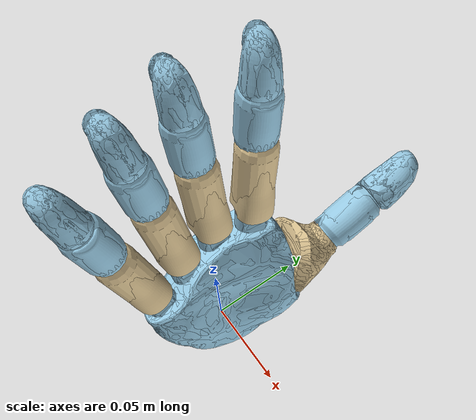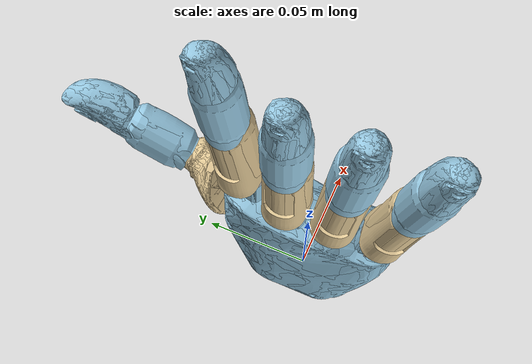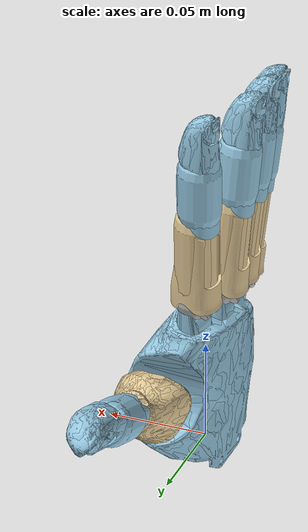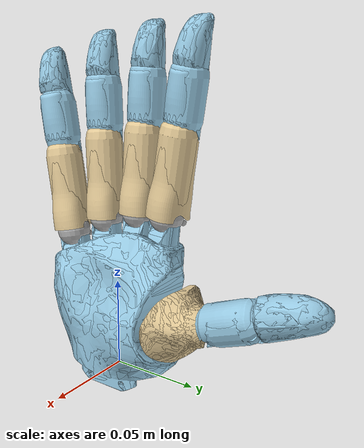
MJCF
<mujoco model="wujihand-right">
  <compiler angle="radian" />

  <option jacobian="sparse" integrator="RK4" timestep="0.002" solver="Newton" iterations="50" tolerance="1e-10" /><default><joint armature="0.0002" damping="0.0" /></default><asset>
    <mesh name="right_palm_link" content_type="model/stl" file="../meshes/right/right_palm_link.STL" />
    <mesh name="right_palm_link_collision" content_type="model/stl" file="../meshes/right/right_palm_link_simplified.STL" />
    <mesh name="right_finger1_link1" content_type="model/stl" file="../meshes/right/right_finger1_link1.STL" />
    <mesh name="right_finger1_link2" content_type="model/stl" file="../meshes/right/right_finger1_link2.STL" />
    <mesh name="right_finger1_link3" content_type="model/stl" file="../meshes/right/right_finger1_link3.STL" />
    <mesh name="right_finger1_link4" content_type="model/stl" file="../meshes/right/right_finger1_link4.STL" />
    <mesh name="right_finger1_link4_simplified" content_type="model/stl" file="../meshes/right/right_finger1_link4_simplified.STL" />
    <mesh name="right_finger1_tip_link" content_type="model/stl" file="../meshes/right/right_finger1_tip_link.STL" />
    <mesh name="right_finger1_link2_softbody" content_type="model/stl" file="../meshes/right/right_finger1_link2_softbody.STL" />
    <mesh name="right_finger1_link2_softbody_simplified" content_type="model/stl" file="../meshes/right/right_finger1_link2_softbody_simplified.STL" />
    <mesh name="right_finger2_link1" content_type="model/stl" file="../meshes/right/right_finger2_link1.STL" />
    <mesh name="right_finger2_link2" content_type="model/stl" file="../meshes/right/right_finger2_link2.STL" />
    <mesh name="right_finger2_link3" content_type="model/stl" file="../meshes/right/right_finger2_link3.STL" />
    <mesh name="right_finger2_link4" content_type="model/stl" file="../meshes/right/right_finger2_link4.STL" />
    <mesh name="right_finger2_link4_simplified" content_type="model/stl" file="../meshes/right/right_finger2_link4_simplified.STL" />
    <mesh name="right_finger2_tip_link" content_type="model/stl" file="../meshes/right/right_finger2_tip_link.STL" />
    <mesh name="right_finger3_link1" content_type="model/stl" file="../meshes/right/right_finger3_link1.STL" />
    <mesh name="right_finger3_link2" content_type="model/stl" file="../meshes/right/right_finger3_link2.STL" />
    <mesh name="right_finger3_link3" content_type="model/stl" file="../meshes/right/right_finger3_link3.STL" />
    <mesh name="right_finger3_link4" content_type="model/stl" file="../meshes/right/right_finger3_link4.STL" />
    <mesh name="right_finger3_link4_simplified" content_type="model/stl" file="../meshes/right/right_finger3_link4_simplified.STL" />
    <mesh name="right_finger3_tip_link" content_type="model/stl" file="../meshes/right/right_finger3_tip_link.STL" />
    <mesh name="right_finger4_link1" content_type="model/stl" file="../meshes/right/right_finger4_link1.STL" />
    <mesh name="right_finger4_link2" content_type="model/stl" file="../meshes/right/right_finger4_link2.STL" />
    <mesh name="right_finger4_link3" content_type="model/stl" file="../meshes/right/right_finger4_link3.STL" />
    <mesh name="right_finger4_link4" content_type="model/stl" file="../meshes/right/right_finger4_link4.STL" />
    <mesh name="right_finger4_link4_simplified" content_type="model/stl" file="../meshes/right/right_finger4_link4_simplified.STL" />
    <mesh name="right_finger4_tip_link" content_type="model/stl" file="../meshes/right/right_finger4_tip_link.STL" />
    <mesh name="right_finger5_link1" content_type="model/stl" file="../meshes/right/right_finger5_link1.STL" />
    <mesh name="right_finger5_link2" content_type="model/stl" file="../meshes/right/right_finger5_link2.STL" />
    <mesh name="right_finger5_link3" content_type="model/stl" file="../meshes/right/right_finger5_link3.STL" />
    <mesh name="right_finger5_link4" content_type="model/stl" file="../meshes/right/right_finger5_link4.STL" />
    <mesh name="right_finger5_link4_simplified" content_type="model/stl" file="../meshes/right/right_finger5_link4_simplified.STL" />
    <mesh name="right_finger5_tip_link" content_type="model/stl" file="../meshes/right/right_finger5_tip_link.STL" />
  </asset>

  <worldbody>
    <body name="right_palm_link"><inertial pos="0.0015244526948108 0.0026423462207805 0.0376699164153404" mass="0.16914" quat="-0.01772809 -0.04274722 0.09308295 0.99458230" diaginertia="1.40677446e-04 9.58896475e-05 5.81329061e-05" /><geom type="mesh" contype="0" conaffinity="0" group="1" density="0" rgba="0.6 0.8 0.9 1" mesh="right_palm_link" />
    <geom type="mesh" rgba="0.6 0.8 0.9 1" mesh="right_palm_link_collision" contype="1" conaffinity="1" />
    <body name="right_finger1_link1" pos="0.0085244 0.020575 0.028712" quat="0.682219 -0.617669 0.0805047 -0.382859">
      <inertial pos="-0.0099171 -0.0059845 0.00152324" quat="0.904243 0.21652 0.0443878 -0.365368" mass="0.0075" diaginertia="3.37599e-07 3.01198e-07 2.11203e-07" />
      <joint name="right_finger1_joint1" pos="0 0 0" axis="0 1 0" range="0.0475 1.6033" actuatorfrcrange="-0.4452 0.4452" armature="0.0005" />
      <geom type="mesh" contype="0" conaffinity="0" group="1" density="0" rgba="0.7 0.7 0.7 1" mesh="right_finger1_link1" />
      <geom type="capsule" size="0.00615198 0.00362986" pos="0 0 0.00827912" rgba="0.7 0.7 0.7 1" contype="0" conaffinity="0" />
      <body name="right_finger1_link2" pos="-0.0047549 -0.0060191 0.014132" quat="0.726252 0.290851 -0.0855912 -0.616958">
        <inertial pos="-0.00136057 -8.49029e-05 0.0150056" quat="0.922053 0.00470413 0.0434721 0.384585" mass="0.0333532" diaginertia="4.2114e-06 4.06368e-06 2.19943e-06" />
        <joint name="right_finger1_joint2" pos="0 0 0" axis="0 1 0" range="-0.1387 0.9324" actuatorfrcrange="-0.4259 0.4259" armature="0.0005" />
        <geom type="mesh" contype="0" conaffinity="0" group="1" density="0" rgba="0.9 0.8 0.6 1" mesh="right_finger1_link2" />
        <geom type="capsule" size="0.00661572 0.0135192" pos="0 0 0.0170004" rgba="0.9 0.8 0.6 1" contype="2" conaffinity="2" />
        <geom type="mesh" contype="0" conaffinity="0" group="1" density="0" rgba="0.9 0.8 0.6 1" mesh="right_finger1_link2_softbody" />
        <geom type="mesh" rgba="0.9 0.8 0.6 1" mesh="right_finger1_link2_softbody_simplified" contype="2" conaffinity="2" />
        <body name="right_finger1_link3" pos="-0.00037714 0.001058 0.034673" quat="0.815725 0.015003 0.0212383 0.577855">
          <inertial pos="0.000775215 -0.000210057 0.0127726" quat="0.999951 0 0.00989566 0" mass="0.0165" diaginertia="1.4604e-06 1.42e-06 4.49604e-07" />
          <joint name="right_finger1_joint3" pos="0 0 0" axis="0 1 0" range="-0.4642 1.5623" actuatorfrcrange="-0.1888 0.1888" />
          <geom type="mesh" contype="0" conaffinity="0" group="1" density="0" rgba="0.6 0.8 0.9 1" mesh="right_finger1_link3" />
          <geom type="capsule" size="0.0110676 0.0081727" pos="0 0 0.0140091" rgba="0.6 0.8 0.9 1" contype="1" conaffinity="1" />
          <body name="right_finger1_link4" pos="0 0 0.0295">
            <inertial pos="3.12489e-05 -0.0001544 0.0148945" quat="0.705239 -0.0513648 -0.0513648 0.705239" mass="0.0206" diaginertia="1.78779e-06 1.75044e-06 7.77343e-07" />
            <joint name="right_finger1_joint4" pos="0 0 0" axis="0 1 0" range="-0.4699 1.5568" actuatorfrcrange="-0.1468 0.1468" />
            <geom type="mesh" contype="0" conaffinity="0" group="1" density="0" rgba="0.6 0.8 0.9 1" mesh="right_finger1_link4" />
            <geom type="mesh" rgba="0.6 0.8 0.9 1" mesh="right_finger1_link4_simplified" contype="1" conaffinity="1" />
            <geom pos="0.00026399 -0.00020119 0.032808" type="mesh" contype="0" conaffinity="0" group="1" density="0" rgba="0.6 0.8 0.9 1" mesh="right_finger1_tip_link" />

          </body>
        </body>
      </body>
    </body>
    <body name="right_finger2_link1" pos="-0.0058701 0.029434 0.091917" quat="0.991689 -0.0588295 -0.0292755 -0.110614">
      <inertial pos="-0.00132914 -2.06891e-08 0.000319815" quat="0.92388 0 0.382683 0" mass="0.0032" diaginertia="1.1e-07 7e-08 5e-08" />
      <joint name="right_finger2_joint1" pos="0 0 0" axis="0 1 0" range="-0.1585 1.5604" actuatorfrcrange="-0.6188 0.6188" armature="0.0005" />
      <geom type="mesh" contype="0" conaffinity="0" group="1" density="0" rgba="0.7 0.7 0.7 1" mesh="right_finger2_link1" />
      <geom type="sphere" size="0.00936231" pos="0 0 -0.000714564" rgba="0.7 0.7 0.7 1" contype="0" conaffinity="0" />
      <body name="right_finger2_link2" pos="0.0022 0 0.00400001" quat="0.707107 0 0 0.707107">
        <inertial pos="1.85614e-06 0.00370979 0.0184837" quat="0.70703 0.0104245 0.0104245 0.70703" mass="0.033" diaginertia="6.34e-06 6.31472e-06 8.85281e-07" />
        <joint name="right_finger2_joint2" pos="0 0 0" axis="0 1 0" range="-0.37 0.37" actuatorfrcrange="-0.1822 0.1822" />
        <geom type="mesh" contype="0" conaffinity="0" group="1" density="0" rgba="0.9 0.8 0.6 1" mesh="right_finger2_link2" />
        <geom type="capsule" size="0.010221 0.0169968" pos="0 0.003 0.021631" rgba="0.9 0.8 0.6 1" contype="2" conaffinity="2" />
        <body name="right_finger2_link3" pos="0 0.00475028 0.0436177" quat="0.707012 0 0 -0.707202">
          <inertial pos="0.000342045 1.41767e-05 0.0134814" quat="0.999892 0 -0.0146884 0" mass="0.0165" diaginertia="1.47088e-06 1.44e-06 4.49118e-07" />
          <joint name="right_finger2_joint3" pos="0 0 0" axis="0 1 0" range="-0.4777 1.5485" actuatorfrcrange="-0.2251 0.2251" />
          <geom type="mesh" contype="0" conaffinity="0" group="1" density="0" rgba="0.6 0.8 0.9 1" mesh="right_finger2_link3" />
          <geom type="capsule" size="0.010221 0.0108889" pos="0 0 0.0136213" rgba="0.6 0.8 0.9 1" contype="1" conaffinity="1" />
          <body name="right_finger2_link4" pos="0 0 0.0295">
            <inertial pos="-0.000676323 -0.000125288 0.0107855" quat="0.995657 -0.0073755 -0.0927682 -0.00265853" mass="0.01718" diaginertia="1.17777e-06 1.07161e-06 4.06444e-07" />
            <joint name="right_finger2_joint4" pos="0 0 0" axis="0 1 0" range="-0.4683 1.5753" actuatorfrcrange="-0.217 0.217" />
            <geom type="mesh" contype="0" conaffinity="0" group="1" density="0" rgba="0.6 0.8 0.9 1" mesh="right_finger2_link4" />
            <geom type="mesh" rgba="0.6 0.8 0.9 1" mesh="right_finger2_link4_simplified" contype="1" conaffinity="1" />
            <geom pos="-0.000749345 0 0.024" quat="1 0 0 0" type="mesh" contype="0" conaffinity="0" group="1" density="0" rgba="0.6 0.8 0.9 1" mesh="right_finger2_tip_link" />

          </body>
        </body>
      </body>
    </body>
    <body name="right_finger3_link1" pos="-0.01046 0.0074615 0.089544" quat="0.999048 -1.26848e-05 -0.0436192 0.000290547">
      <inertial pos="-0.00132908 3.41333e-09 0.000319983" quat="0.92388 0 0.382683 0" mass="0.0032" diaginertia="1.1e-07 7e-08 5e-08" />
      <joint name="right_finger3_joint1" pos="0 0 0" axis="0 1 0" range="-0.1644 1.5516" actuatorfrcrange="-0.6494 0.6494" armature="0.0005" />
      <geom type="mesh" contype="0" conaffinity="0" group="1" density="0" rgba="0.7 0.7 0.7 1" mesh="right_finger3_link1" />
      <geom type="sphere" size="0.00939653" pos="0 0 -0.000715513" rgba="0.7 0.7 0.7 1" contype="0" conaffinity="0" />
      <body name="right_finger3_link2" pos="0.0022 0 0.00400001" quat="0.707107 0 0 0.707107">
        <inertial pos="1.86459e-06 0.0037098 0.0184837" quat="0.70703 0.0104245 0.0104245 0.70703" mass="0.033" diaginertia="6.34e-06 6.31472e-06 8.85281e-07" />
        <joint name="right_finger3_joint2" pos="0 0 0" axis="0 1 0" range="-0.37 0.37" actuatorfrcrange="-0.1827 0.1827" />
        <geom type="mesh" contype="0" conaffinity="0" group="1" density="0" rgba="0.9 0.8 0.6 1" mesh="right_finger3_link2" />
        <geom type="capsule" size="0.010184 0.0170338" pos="0 0.003 0.021631" rgba="0.9 0.8 0.6 1" contype="2" conaffinity="2" />
        <body name="right_finger3_link3" pos="0 0.00475 0.0436177" quat="0.707012 0 0 -0.707202">
          <inertial pos="0.00033388 1.06802e-05 0.0134865" quat="0.999892 0 -0.0146884 0" mass="0.0165" diaginertia="1.47088e-06 1.44e-06 4.49118e-07" />
          <joint name="right_finger3_joint3" pos="0 0 0" axis="0 1 0" range="-0.4739 1.5512" actuatorfrcrange="-0.2078 0.2078" />
          <geom type="mesh" contype="0" conaffinity="0" group="1" density="0" rgba="0.6 0.8 0.9 1" mesh="right_finger3_link3" />
          <geom type="capsule" size="0.010184 0.0109259" pos="0 0 0.0136212" rgba="0.6 0.8 0.9 1" contype="1" conaffinity="1" />
          <body name="right_finger3_link4" pos="0 0 0.0295">
            <inertial pos="-0.000676528 -0.00012547 0.0107852" quat="0.995657 -0.00737867 -0.0927683 -0.00263311" mass="0.01718" diaginertia="1.17777e-06 1.07161e-06 4.06449e-07" />
            <joint name="right_finger3_joint4" pos="0 0 0" axis="0 1 0" range="-0.4684 1.5745" actuatorfrcrange="-0.2018 0.2018" />
            <geom type="mesh" contype="0" conaffinity="0" group="1" density="0" rgba="0.6 0.8 0.9 1" mesh="right_finger3_link4" />
            <geom type="mesh" rgba="0.6 0.8 0.9 1" mesh="right_finger3_link4_simplified" contype="1" conaffinity="1" />
            <geom pos="-0.00075 0 0.024" quat="1 0 0 -0.000156524" type="mesh" contype="0" conaffinity="0" group="1" density="0" rgba="0.6 0.8 0.9 1" mesh="right_finger3_tip_link" />

          </body>
        </body>
      </body>
    </body>
    <body name="right_finger4_link1" pos="-0.0076649 -0.013712 0.084429" quat="0.997789 0.0461019 -0.0405884 0.0254002">
      <inertial pos="-0.00132912 1.24361e-09 0.000319884" quat="0.92388 0 0.382683 0" mass="0.0032" diaginertia="1.1e-07 7e-08 5e-08" />
      <joint name="right_finger4_joint1" pos="0 0 0" axis="0 1 0" range="-0.1554 1.5585" actuatorfrcrange="-0.6389 0.6389" armature="0.0005" />
      <geom type="mesh" contype="0" conaffinity="0" group="1" density="0" rgba="0.7 0.7 0.7 1" mesh="right_finger4_link1" />
      <geom type="sphere" size="0.00938587" pos="0 0 -0.000693929" rgba="0.7 0.7 0.7 1" contype="0" conaffinity="0" />
      <body name="right_finger4_link2" pos="0.0022 0 0.00400001" quat="0.707107 -0.000213851 -0.000213851 0.707107">
        <inertial pos="1.84945e-06 0.00370375 0.0185161" quat="0.70703 0.0104245 0.0104245 0.70703" mass="0.033" diaginertia="6.34e-06 6.31472e-06 8.85281e-07" />
        <joint name="right_finger4_joint2" pos="0 0 0" axis="0 1 0" range="-0.37 0.37" actuatorfrcrange="-0.1832 0.1832" />
        <geom type="mesh" contype="0" conaffinity="0" group="1" density="0" rgba="0.9 0.8 0.6 1" mesh="right_finger4_link2" />
        <geom type="capsule" size="0.0101786 0.0170048" pos="0 0.003 0.021669" rgba="0.9 0.8 0.6 1" contype="2" conaffinity="2" />
        <body name="right_finger4_link3" pos="0 0.00472362 0.0436206" quat="0.707012 0.00021388 0.000213823 -0.707202">
          <inertial pos="0.000319082 1.04411e-05 0.0135409" quat="0.999892 0 -0.0146884 0" mass="0.0165" diaginertia="1.47088e-06 1.44e-06 4.49118e-07" />
          <joint name="right_finger4_joint3" pos="0 0 0" axis="0 1 0" range="-0.4765 1.5487" actuatorfrcrange="-0.2249 0.2249" />
          <geom type="mesh" contype="0" conaffinity="0" group="1" density="0" rgba="0.6 0.8 0.9 1" mesh="right_finger4_link3" />
          <geom type="capsule" size="0.0101786 0.0108995" pos="0 0 0.0136532" rgba="0.6 0.8 0.9 1" contype="1" conaffinity="1" />
          <body name="right_finger4_link4" pos="0 0 0.0295">
            <inertial pos="-0.000714949 -0.000139909 0.0108406" quat="0.995656 -0.00751973 -0.0927913 -0.00151388" mass="0.01718" diaginertia="1.17803e-06 1.07186e-06 4.06933e-07" />
            <joint name="right_finger4_joint4" pos="0 0 0" axis="0 1 0" range="-0.4777 1.5634" actuatorfrcrange="-0.2044 0.2044" />
            <geom type="mesh" contype="0" conaffinity="0" group="1" density="0" rgba="0.6 0.8 0.9 1" mesh="right_finger4_link4" />
            <geom type="mesh" rgba="0.6 0.8 0.9 1" mesh="right_finger4_link4_simplified" contype="1" conaffinity="1" />
            <geom pos="-0.000811164 0 0.0239995" quat="1 0 0 0" type="mesh" contype="0" conaffinity="0" group="1" density="0" rgba="0.6 0.8 0.9 1" mesh="right_finger4_tip_link" />

          </body>
        </body>
      </body>
    </body>
    <body name="right_finger5_link1" pos="-0.00226865 -0.0340011 0.0742813" quat="0.990869 0.0993173 -0.0383255 0.0827362">
      <inertial pos="-0.00132913 1.08611e-08 0.000319899" quat="0.92388 0 0.382683 0" mass="0.0032" diaginertia="1.1e-07 7e-08 5e-08" />
      <joint name="right_finger5_joint1" pos="0 0 0" axis="0 1 0" range="-0.1626 1.5585" actuatorfrcrange="-0.6441 0.6441" armature="0.0005" />
      <geom type="mesh" contype="0" conaffinity="0" group="1" density="0" rgba="0.7 0.7 0.7 1" mesh="right_finger5_link1" />
      <geom type="sphere" size="0.00939158" pos="0 0 -0.000718182" rgba="0.7 0.7 0.7 1" contype="0" conaffinity="0" />
      <body name="right_finger5_link2" pos="0.0022 0 0.00400001" quat="0.707107 -0.00026748 -0.00026748 0.707107">
        <inertial pos="1.84966e-06 0.0037023 0.0193362" quat="0.70703 0.0104245 0.0104245 0.70703" mass="0.033" diaginertia="6.34e-06 6.31472e-06 8.85281e-07" />
        <joint name="right_finger5_joint2" pos="0 0 0" axis="0 1 0" range="-0.37 0.37" actuatorfrcrange="-0.1798 0.1798" />
        <geom type="mesh" contype="0" conaffinity="0" group="1" density="0" rgba="0.9 0.8 0.6 1" mesh="right_finger5_link2" />
        <geom type="capsule" size="0.0101586 0.016917" pos="0 0.003 0.0217777" rgba="0.9 0.8 0.6 1" contype="2" conaffinity="2" />
        <body name="right_finger5_link3" pos="0 0.004717 0.0436213" quat="0.707012 0.000267516 0.000267444 -0.707202">
          <inertial pos="0.000328501 5.05492e-06 0.0142853" quat="0.999892 0 -0.0146884 0" mass="0.0165" diaginertia="1.47088e-06 1.44e-06 4.49118e-07" />
          <joint name="right_finger5_joint3" pos="0 0 0" axis="0 1 0" range="-0.4768 1.549" actuatorfrcrange="-0.2384 0.2384" />
          <geom type="mesh" contype="0" conaffinity="0" group="1" density="0" rgba="0.6 0.8 0.9 1" mesh="right_finger5_link3" />
          <geom type="capsule" size="0.0101586 0.00992035" pos="0 0 0.0146523" rgba="0.6 0.8 0.9 1" contype="1" conaffinity="1" />
          <body name="right_finger5_link4" pos="0 0 0.0295">
            <inertial pos="-0.000754828 -0.000172322 0.0122784" quat="0.995656 -0.00756106 -0.0927979 -0.00118593" mass="0.01718" diaginertia="1.1781e-06 1.07193e-06 4.07074e-07" />
            <joint name="right_finger5_joint4" pos="0 0 0" axis="0 1 0" range="-0.4683 1.5735" actuatorfrcrange="-0.1866 0.1866" />
            <geom type="mesh" contype="0" conaffinity="0" group="1" density="0" rgba="0.6 0.8 0.9 1" mesh="right_finger5_link4" />
            <geom type="mesh" rgba="0.6 0.8 0.9 1" mesh="right_finger5_link4_simplified" contype="1" conaffinity="1" />
            <geom pos="-0.000828016 0 0.0259994" quat="1 0 0 0" type="mesh" contype="0" conaffinity="0" group="1" density="0" rgba="0.6 0.8 0.9 1" mesh="right_finger5_tip_link" />

          </body>
        </body>
      </body>
    </body>
  </body></worldbody>
  <actuator>
    <position name="right_finger1_joint1_actuator" joint="right_finger1_joint1" kp="0.40844710645048043" kv="0.020882010257063675" ctrlrange="0.0475 1.6033" forcerange="-0.4452 0.4452" />
    <position name="right_finger1_joint2_actuator" joint="right_finger1_joint2" kp="0.6858601063643346" kv="0.030610939996373314" ctrlrange="-0.1387 0.9324" forcerange="-0.4259 0.4259" />
    <position name="right_finger1_joint3_actuator" joint="right_finger1_joint3" kp="0.2391112196099482" kv="0.010181475050560962" ctrlrange="-0.4642 1.5623" forcerange="-0.1888 0.1888" />
    <position name="right_finger1_joint4_actuator" joint="right_finger1_joint4" kp="0.20736128319711747" kv="0.00909698844675045" ctrlrange="-0.4699 1.5568" forcerange="-0.1468 0.1468" />
    <position name="right_finger2_joint1_actuator" joint="right_finger2_joint1" kp="0.37352218155860073" kv="0.01882274330029718" ctrlrange="-0.1585 1.5604" forcerange="-0.6188 0.6188" />
    <position name="right_finger2_joint2_actuator" joint="right_finger2_joint2" kp="0.45592448909027794" kv="0.019798167597016643" ctrlrange="-0.37 0.37" forcerange="-0.1822 0.1822" />
    <position name="right_finger2_joint3_actuator" joint="right_finger2_joint3" kp="0.24368366649522863" kv="0.010477031953162727" ctrlrange="-0.4777 1.5485" forcerange="-0.2251 0.2251" />
    <position name="right_finger2_joint4_actuator" joint="right_finger2_joint4" kp="0.18026971340925335" kv="0.008240212147903584" ctrlrange="-0.4683 1.5753" forcerange="-0.217 0.217" />
    <position name="right_finger3_joint1_actuator" joint="right_finger3_joint1" kp="0.3687093483646485" kv="0.01848622487024593" ctrlrange="-0.1644 1.5516" forcerange="-0.6494 0.6494" />
    <position name="right_finger3_joint2_actuator" joint="right_finger3_joint2" kp="0.4164253443634641" kv="0.018032947229953678" ctrlrange="-0.37 0.37" forcerange="-0.1827 0.1827" />
    <position name="right_finger3_joint3_actuator" joint="right_finger3_joint3" kp="0.22218607502059182" kv="0.009592200014076666" ctrlrange="-0.4739 1.5512" forcerange="-0.2078 0.2078" />
    <position name="right_finger3_joint4_actuator" joint="right_finger3_joint4" kp="0.19427606072023446" kv="0.009152994605972402" ctrlrange="-0.4684 1.5745" forcerange="-0.2018 0.2018" />
    <position name="right_finger4_joint1_actuator" joint="right_finger4_joint1" kp="0.35718151495111794" kv="0.018376606800780005" ctrlrange="-0.1554 1.5585" forcerange="-0.6389 0.6389" />
    <position name="right_finger4_joint2_actuator" joint="right_finger4_joint2" kp="0.42977315313086895" kv="0.01867700966212433" ctrlrange="-0.37 0.37" forcerange="-0.1832 0.1832" />
    <position name="right_finger4_joint3_actuator" joint="right_finger4_joint3" kp="0.24930151196247122" kv="0.01059512121009555" ctrlrange="-0.4765 1.5487" forcerange="-0.2249 0.2249" />
    <position name="right_finger4_joint4_actuator" joint="right_finger4_joint4" kp="0.2285032688178066" kv="0.009917602877441107" ctrlrange="-0.4777 1.5634" forcerange="-0.2044 0.2044" />
    <position name="right_finger5_joint1_actuator" joint="right_finger5_joint1" kp="0.3655325975433942" kv="0.018616960278988272" ctrlrange="-0.1626 1.5585" forcerange="-0.6441 0.6441" />
    <position name="right_finger5_joint2_actuator" joint="right_finger5_joint2" kp="0.41393113081120425" kv="0.018732177029667153" ctrlrange="-0.37 0.37" forcerange="-0.1798 0.1798" />
    <position name="right_finger5_joint3_actuator" joint="right_finger5_joint3" kp="0.22729367621965954" kv="0.00951005441616486" ctrlrange="-0.4768 1.549" forcerange="-0.2384 0.2384" />
    <position name="right_finger5_joint4_actuator" joint="right_finger5_joint4" kp="0.1964723550341816" kv="0.009017295241756363" ctrlrange="-0.4683 1.5735" forcerange="-0.1866 0.1866" />
  </actuator>
</mujoco>
